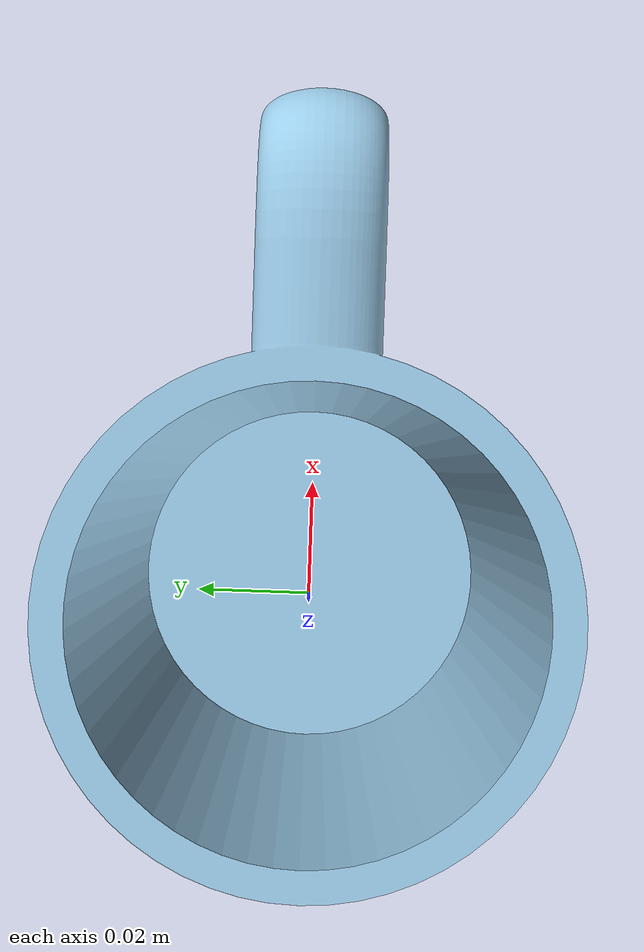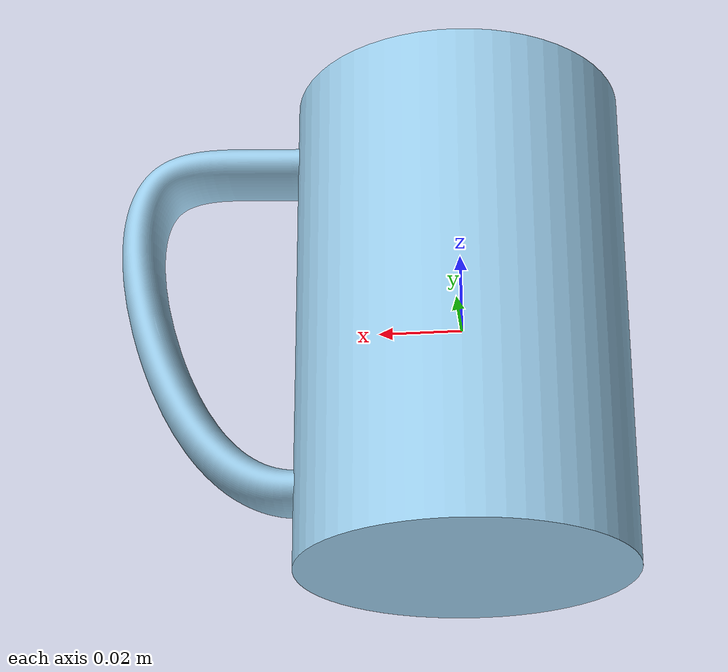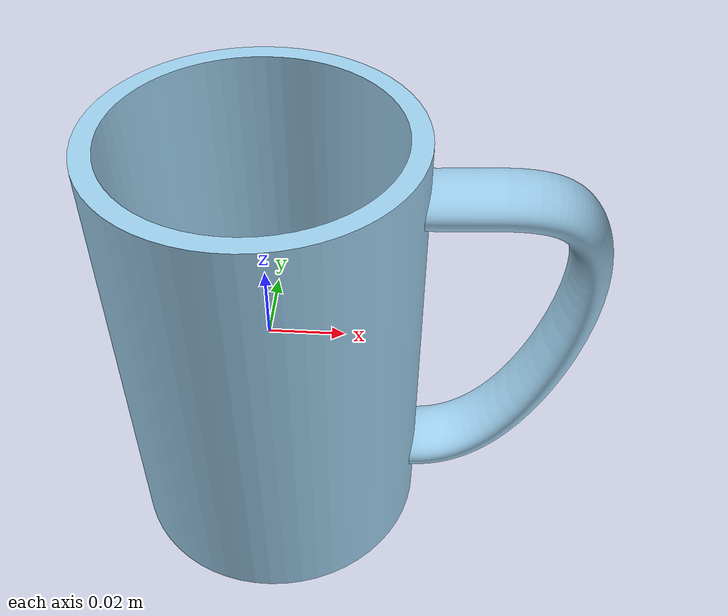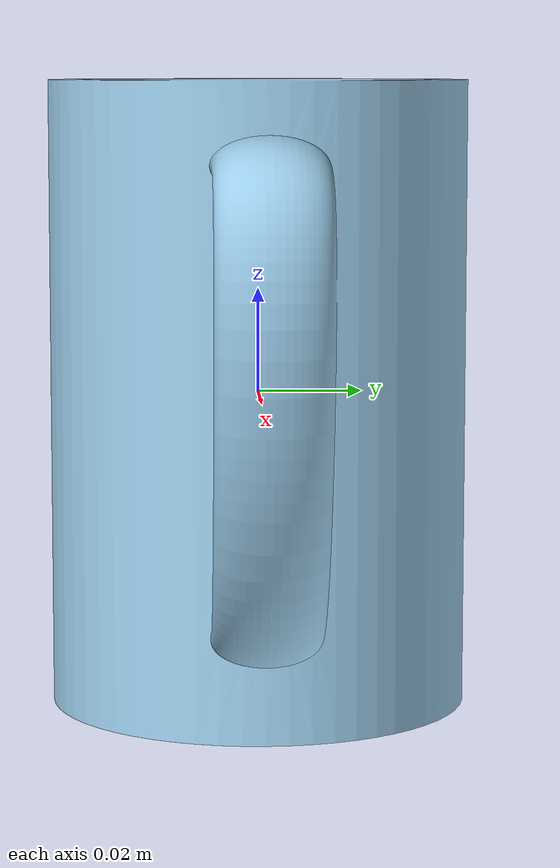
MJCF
<mujoco model="cup">
  <default>
    <default class="visual">
      <geom group="2" type="mesh" contype="0" conaffinity="0"/>
    </default>
    <default class="collision">
      <geom group="3" type="mesh"/>
    </default>
  </default>
  <asset>
    <material name="0.615686_0.811765_0.929412_0.000000_0.000000" specular="0.0" shininess="0.0" rgba="0.6157 0.8118 0.9294 1"/>
    <mesh file="cup.obj"/>
    <mesh file="cup_collision_0.obj"/>
    <mesh file="cup_collision_1.obj"/>
    <mesh file="cup_collision_2.obj"/>
    <mesh file="cup_collision_3.obj"/>
    <mesh file="cup_collision_4.obj"/>
    <mesh file="cup_collision_5.obj"/>
    <mesh file="cup_collision_6.obj"/>
    <mesh file="cup_collision_7.obj"/>
    <mesh file="cup_collision_8.obj"/>
    <mesh file="cup_collision_9.obj"/>
    <mesh file="cup_collision_10.obj"/>
    <mesh file="cup_collision_11.obj"/>
    <mesh file="cup_collision_12.obj"/>
    <mesh file="cup_collision_13.obj"/>
    <mesh file="cup_collision_14.obj"/>
    <mesh file="cup_collision_15.obj"/>
    <mesh file="cup_collision_16.obj"/>
    <mesh file="cup_collision_17.obj"/>
    <mesh file="cup_collision_18.obj"/>
    <mesh file="cup_collision_19.obj"/>
    <mesh file="cup_collision_20.obj"/>
    <mesh file="cup_collision_21.obj"/>
    <mesh file="cup_collision_22.obj"/>
    <mesh file="cup_collision_23.obj"/>
    <mesh file="cup_collision_24.obj"/>
    <mesh file="cup_collision_25.obj"/>
    <mesh file="cup_collision_26.obj"/>
    <mesh file="cup_collision_27.obj"/>
    <mesh file="cup_collision_28.obj"/>
    <mesh file="cup_collision_29.obj"/>
    <mesh file="cup_collision_30.obj"/>
  </asset>
  <worldbody>
    <body name="cup">
      <freejoint/>
      <geom material="0.615686_0.811765_0.929412_0.000000_0.000000" mesh="cup" class="visual"/>
      <geom mesh="cup_collision_0" rgba="0.6715068528315747 0.8765100401084428 0.27943780681187724 1" class="collision"/>
      <geom mesh="cup_collision_1" rgba="0.016755239694073554 0.9343404427739651 0.5322313699011413 1" class="collision"/>
      <geom mesh="cup_collision_2" rgba="0.013276652770110586 0.7597496295303674 0.059222530540232965 1" class="collision"/>
      <geom mesh="cup_collision_3" rgba="0.849194127690675 0.48161556608362177 0.18076552213666341 1" class="collision"/>
      <geom mesh="cup_collision_4" rgba="0.8488853057064584 0.050494836238701546 0.15201851016397971 1" class="collision"/>
      <geom mesh="cup_collision_5" rgba="0.28979513421618486 0.7263521774994909 0.13882075912999225 1" class="collision"/>
      <geom mesh="cup_collision_6" rgba="0.38009578899574825 0.5243127105237192 0.09785819369905113 1" class="collision"/>
      <geom mesh="cup_collision_7" rgba="0.5849480593196213 0.636644353280682 0.18732922342168368 1" class="collision"/>
      <geom mesh="cup_collision_8" rgba="0.14270254305473473 0.19727922108935236 0.035639515083072726 1" class="collision"/>
      <geom mesh="cup_collision_9" rgba="0.23897334903957934 0.9604823581271497 0.27954658681778943 1" class="collision"/>
      <geom mesh="cup_collision_10" rgba="0.8580248378016164 0.43472839043997513 0.7411883334156071 1" class="collision"/>
      <geom mesh="cup_collision_11" rgba="0.28723192200162406 0.24644032325087706 0.6619115453480173 1" class="collision"/>
      <geom mesh="cup_collision_12" rgba="0.9898783850296269 0.3356854776136373 0.3449787085384829 1" class="collision"/>
      <geom mesh="cup_collision_13" rgba="0.48732340372307026 0.3400648745349606 0.9717923744932379 1" class="collision"/>
      <geom mesh="cup_collision_14" rgba="0.12940900272191858 0.17257675237388048 0.9663953483441698 1" class="collision"/>
      <geom mesh="cup_collision_15" rgba="0.8113212185054002 0.5968234785471236 0.809736164548407 1" class="collision"/>
      <geom mesh="cup_collision_16" rgba="0.948547782118674 0.930752214942757 0.545554717163341 1" class="collision"/>
      <geom mesh="cup_collision_17" rgba="0.892394019019802 0.7781757024664728 0.35595935915656784 1" class="collision"/>
      <geom mesh="cup_collision_18" rgba="0.31449187851602767 0.1526387900508187 0.3401549090344348 1" class="collision"/>
      <geom mesh="cup_collision_19" rgba="0.25502918111942463 0.8043983938105846 0.10325907637926246 1" class="collision"/>
      <geom mesh="cup_collision_20" rgba="0.3636244065601526 0.25892960175700364 0.14628547974322004 1" class="collision"/>
      <geom mesh="cup_collision_21" rgba="0.928918244883827 0.3355413280192958 0.7734560978976258 1" class="collision"/>
      <geom mesh="cup_collision_22" rgba="0.9428023705801282 0.21491096042507585 0.03818663913847109 1" class="collision"/>
      <geom mesh="cup_collision_23" rgba="0.4852355958247566 0.7524671804693595 0.6704481984496091 1" class="collision"/>
      <geom mesh="cup_collision_24" rgba="0.2649807230397314 0.28861751923081347 0.930157359176433 1" class="collision"/>
      <geom mesh="cup_collision_25" rgba="0.025290495774870414 0.5970088565488268 0.5595872401673205 1" class="collision"/>
      <geom mesh="cup_collision_26" rgba="0.1295208556194991 0.21390595079070074 0.9784416760437448 1" class="collision"/>
      <geom mesh="cup_collision_27" rgba="0.4202033355800877 0.9343938931686048 0.8326612976413126 1" class="collision"/>
      <geom mesh="cup_collision_28" rgba="0.196816569958018 0.8105573058616782 0.5871889456177959 1" class="collision"/>
      <geom mesh="cup_collision_29" rgba="0.5867618829136376 0.9338876162251832 0.21455082346931642 1" class="collision"/>
      <geom mesh="cup_collision_30" rgba="0.9788642183509061 0.32732522249377605 0.001493648010122972 1" class="collision"/>
    </body>
  </worldbody>
</mujoco>
